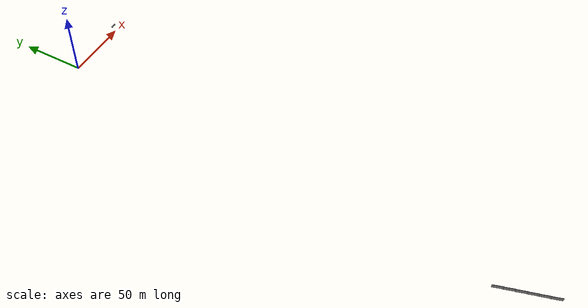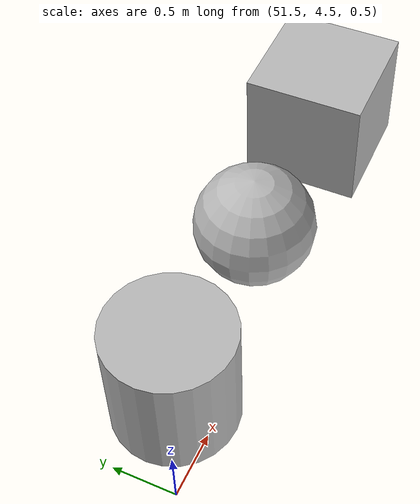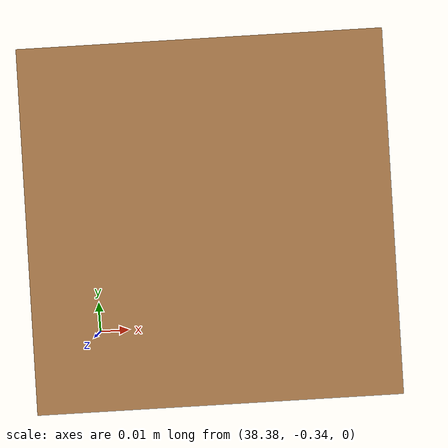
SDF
<sdf version="1.6">
 <world name="default">
  <light name="sun" type="directional">
   <pose>0 0 10 0 -0 0</pose>
   <diffuse>0.8 0.8 0.8 1</diffuse>
   <specular>0.2 0.2 0.2 1</specular>
   <attenuation>
    <range>1000</range>
    <constant>0.9</constant>
    <linear>0.01</linear>
    <quadratic>0.001</quadratic>
   </attenuation>
   <direction>-0.5 0.1 -0.9</direction>
  </light>
  <gravity>0 0 -9.8</gravity>
  <magnetic_field>6e-06 2.3e-05 -4.2e-05</magnetic_field>
  <atmosphere type="adiabatic"/>
  <physics name="default_physics" default="0" type="ode">
   <max_step_size>0.001</max_step_size>
   <real_time_factor>1</real_time_factor>
   <real_time_update_rate>1000</real_time_update_rate>
  </physics>
  <scene><ambient>0.4 0.4 0.4 1</ambient><background>0.7 0.7 0.7 1</background><shadows>1</shadows></scene>
  <audio><device>default</device></audio>
  <spherical_coordinates>
   <surface_model>EARTH_WGS84</surface_model>
   <latitude_deg>0</latitude_deg>
   <longitude_deg>0</longitude_deg>
   <elevation>0</elevation>
   <heading_deg>0</heading_deg>
  </spherical_coordinates>
  <model name="grey_wall">
   <static>1</static>
   <link name="link">
    <pose>0 0 1.4 0 -0 0</pose>
    <collision name="collision"><geometry><box><size>7.5 0.2 2.8</size></box></geometry></collision>
    <visual name="visual">
     <cast_shadows>0</cast_shadows>
     <geometry><box><size>7.5 0.2 2.8</size></box></geometry>
     <material>
      <script>
       <uri>model://grey_wall/materials/scripts</uri>
       <uri>model://grey_wall/materials/textures</uri>
       <name>vrc/grey_wall</name>
      </script>
     </material>
    </visual>
   </link>
   <pose>-29 -350 0 0 -0 1.87601</pose>
  </model>
  <model name="grey_wall_clone">
   <static>1</static>
   <link name="link">
    <pose>0 0 1.4 0 -0 0</pose>
    <collision name="collision"><geometry><box><size>7.5 0.2 2.8</size></box></geometry></collision>
    <visual name="visual">
     <cast_shadows>0</cast_shadows>
     <geometry><box><size>7.5 0.2 2.8</size></box></geometry>
     <material>
      <script>
       <uri>model://grey_wall/materials/scripts</uri>
       <uri>model://grey_wall/materials/textures</uri>
       <name>vrc/grey_wall</name>
      </script>
     </material>
    </visual>
   </link>
   <pose>-27 -357 0 0 -0 1.87601</pose>
  </model>
  <model name="grey_wall_clone_0">
   <static>1</static>
   <link name="link">
    <pose>0 0 1.4 0 -0 0</pose>
    <collision name="collision"><geometry><box><size>7.5 0.2 2.8</size></box></geometry></collision>
    <visual name="visual">
     <cast_shadows>0</cast_shadows>
     <geometry><box><size>7.5 0.2 2.8</size></box></geometry>
     <material>
      <script>
       <uri>model://grey_wall/materials/scripts</uri>
       <uri>model://grey_wall/materials/textures</uri>
       <name>vrc/grey_wall</name>
      </script>
     </material>
    </visual>
   </link>
   <pose>-25 -364 0 0 -0 1.87601</pose>
  </model>
  <model name="grey_wall_clone_0_clone">
   <static>1</static>
   <link name="link">
    <pose>0 0 1.4 0 -0 0</pose>
    <collision name="collision"><geometry><box><size>7.5 0.2 2.8</size></box></geometry></collision>
    <visual name="visual">
     <cast_shadows>0</cast_shadows>
     <geometry><box><size>7.5 0.2 2.8</size></box></geometry>
     <material>
      <script>
       <uri>model://grey_wall/materials/scripts</uri>
       <uri>model://grey_wall/materials/textures</uri>
       <name>vrc/grey_wall</name>
      </script>
     </material>
    </visual>
   </link>
   <pose>-23 -371 0 0 -0 1.87601</pose>
  </model>
  <model name="grey_wall_clone_0_clone_clone">
   <static>1</static>
   <link name="link">
    <pose>0 0 1.4 0 -0 0</pose>
    <collision name="collision"><geometry><box><size>7.5 0.2 2.8</size></box></geometry></collision>
    <visual name="visual">
     <cast_shadows>0</cast_shadows>
     <geometry><box><size>7.5 0.2 2.8</size></box></geometry>
     <material>
      <script>
       <uri>model://grey_wall/materials/scripts</uri>
       <uri>model://grey_wall/materials/textures</uri>
       <name>vrc/grey_wall</name>
      </script>
     </material>
    </visual>
   </link>
   <pose>-21 -378 0 0 -0 1.87601</pose>
  </model>
  <model name="grey_wall_clone_0_clone_clone_clone">
   <static>1</static>
   <link name="link">
    <pose>0 0 1.4 0 -0 0</pose>
    <collision name="collision"><geometry><box><size>7.5 0.2 2.8</size></box></geometry></collision>
    <visual name="visual">
     <cast_shadows>0</cast_shadows>
     <geometry><box><size>7.5 0.2 2.8</size></box></geometry>
     <material>
      <script>
       <uri>model://grey_wall/materials/scripts</uri>
       <uri>model://grey_wall/materials/textures</uri>
       <name>vrc/grey_wall</name>
      </script>
     </material>
    </visual>
   </link>
   <pose>-19 -385 0 0 -0 1.87601</pose>
  </model>
  <model name="wood_cube_7_5cm">
   <link name="link">
    <pose>0 0 0.0375 0 -0 0</pose>
    <inertial>
     <mass>0.2249</mass>
     <inertia>
      <ixx>0.000210844</ixx>
      <ixy>0</ixy>
      <ixz>0</ixz>
      <iyy>0.000210844</iyy>
      <iyz>0</iyz>
      <izz>0.000210844</izz>
     </inertia>
    </inertial>
    <collision name="collision">
     <geometry><box><size>0.075 0.075 0.075</size></box></geometry>
     <surface>
      <contact>
       <poissons_ratio>0.347</poissons_ratio>
       <elastic_modulus>8.8e+09</elastic_modulus>
       <ode><kp>100000</kp><kd>100</kd><max_vel>100</max_vel><min_depth>0.001</min_depth></ode>
      </contact>
      <friction>
       <torsional>
        <coefficient>1</coefficient>
        <use_patch_radius>0</use_patch_radius>
        <surface_radius>0.01</surface_radius>
       </torsional>
      </friction>
     </surface>
    </collision>
    <visual name="visual">
     <geometry><box><size>0.075 0.075 0.075</size></box></geometry>
     <material>
      <script><uri>file://media/materials/scripts/gazebo.material</uri><name>Gazebo/Wood</name></script>
     </material>
    </visual>
   </link>
   <pose>38.4203 -0.303969 -0.001005 0 -0 0</pose>
  </model>
  <model name="textured_shapes">
   <pose>53.7157 4.89851 0.816119 -1e-06 -0 1.58636</pose>
   <link name="box">
    <pose>0 -1.5 0 0 -0 0</pose>
    <collision name="collision"><geometry><box><size>1 1 1</size></box></geometry></collision>
    <visual name="visual">
     <geometry><box><size>1 1 1</size></box></geometry>
     <material>
      <script>
       <uri>model://textured_shapes/materials/scripts</uri>
       <uri>model://textured_shapes/materials/textures</uri>
       <name>TexturedShape/Squares</name>
      </script>
     </material>
    </visual>
    <inertial>
     <inertia><ixx>1</ixx><ixy>0</ixy><ixz>0</ixz><iyy>1</iyy><iyz>0</iyz><izz>1</izz></inertia>
     <mass>1</mass>
    </inertial>
   </link>
   <link name="sphere">
    <collision name="collision"><geometry><sphere><radius>0.5</radius></sphere></geometry></collision>
    <visual name="visual">
     <geometry><sphere><radius>0.5</radius></sphere></geometry>
     <material>
      <script>
       <uri>model://textured_shapes/materials/scripts</uri>
       <uri>model://textured_shapes/materials/textures</uri>
       <name>TexturedShape/Squares</name>
      </script>
     </material>
    </visual>
    <inertial>
     <inertia><ixx>1</ixx><ixy>0</ixy><ixz>0</ixz><iyy>1</iyy><iyz>0</iyz><izz>1</izz></inertia>
     <mass>1</mass>
    </inertial>
   </link>
   <link name="cylinder">
    <pose>0 1.5 0 0 -0 0</pose>
    <collision name="collision">
     <geometry><cylinder><radius>0.5</radius><length>1</length></cylinder></geometry>
    </collision>
    <visual name="visual">
     <geometry><cylinder><radius>0.5</radius><length>1</length></cylinder></geometry>
     <material>
      <script>
       <uri>model://textured_shapes/materials/scripts</uri>
       <uri>model://textured_shapes/materials/textures</uri>
       <name>TexturedShape/Squares</name>
      </script>
     </material>
    </visual>
    <inertial>
     <inertia><ixx>1</ixx><ixy>0</ixy><ixz>0</ixz><iyy>1</iyy><iyz>0</iyz><izz>1</izz></inertia>
     <mass>1</mass>
    </inertial>
   </link>
  </model>
 </world>
</sdf>
